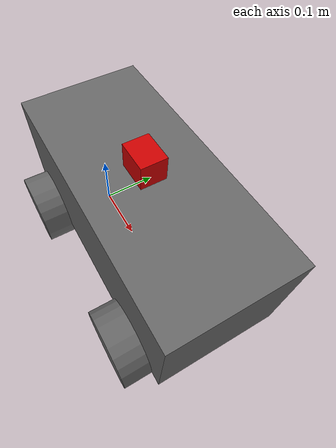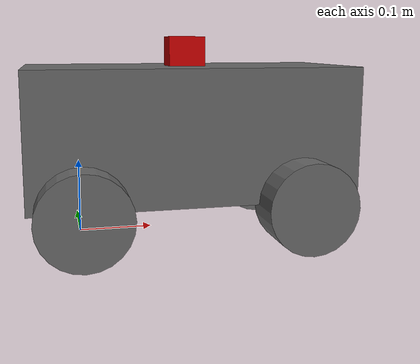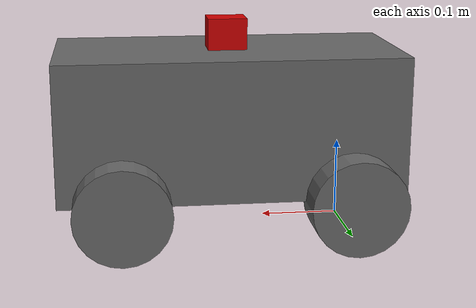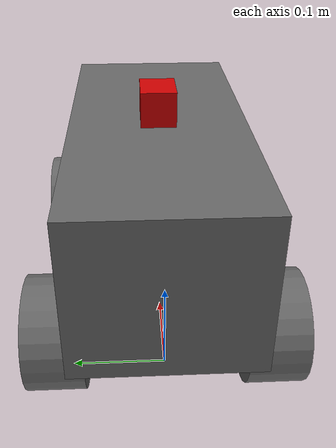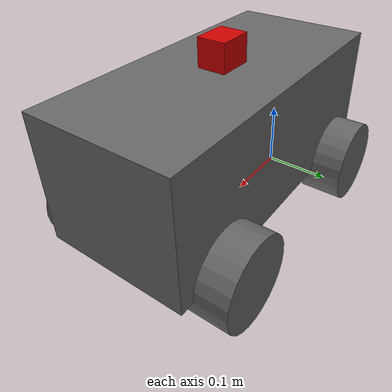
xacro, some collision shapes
<?xml version="1.0"?>
<robot name="bearcar" xmlns:xacro="http://ros.org/wiki/xacro">

      <xacro:include filename="bearcar_properties.xacro"/>
      <xacro:include filename="bearcar_core.xacro"/>
      <xacro:include filename="bearcar_lidar.xacro"/>
      <xacro:include filename="bearcar_d455.xacro"/>
      <xacro:include filename="bearcar_t265.xacro"/>

</robot>

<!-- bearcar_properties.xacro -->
<robot xmlns:xacro="http://www.ros.org/wiki/xacro">

    <material name="aluminum">
        <color rgba="0.5 0.5 0.5 1"/>
    </material>

    <material name="black">
        <color rgba="0.0 0.0 0.0 1.0"/>
    </material>

    <material name="blue">
        <color rgba="0.0 0.0 0.8 1.0"/>
    </material>

    <material name="brown">
        <color rgba="0.8706 0.8118 0.7647 1.0"/>
    </material>

    <material name="dark">
        <color rgba="0.3 0.3 0.3 1.0"/>
    </material>

    <material name="green">
        <color rgba="0.0 0.8 0.0 1.0"/>
    </material>

    <material name="grey">
        <color rgba="0.5 0.5 0.5 1.0"/>
    </material>

    <material name="light_black">
        <color rgba="0.4 0.4 0.4 1.0"/>
    </material>

    <material name="orange">
        <color rgba="1.0 0.4235 0.0392 1.0"/>
    </material>

    <material name="plastic">
        <color rgba="0.1 0.1 0.1 1"/>
    </material>

    <material name="red">
        <color rgba="0.8 0.0 0.0 1.0"/>
    </material>

    <material name="white">
        <color rgba="1.0 1.0 1.0 1.0"/>
    </material>

    <xacro:macro name="inertial_box" params="mass x y z *origin">
        <inertial>
            <xacro:insert_block name="origin"/>
            <mass value="${mass}" />
            <inertia ixx="${(1/12) * mass * (y*y+z*z)}" ixy="0.0" ixz="0.0"
                    iyy="${(1/12) * mass * (x*x+z*z)}" iyz="0.0"
                    izz="${(1/12) * mass * (x*x+y*y)}" />
        </inertial>
    </xacro:macro>

    <xacro:macro name="inertial_cylinder" params="mass length radius *origin">
        <inertial>
            <xacro:insert_block name="origin"/>
            <mass value="${mass}" />
            <inertia ixx="${(1/12) * mass * (3*radius*radius + length*length)}" ixy="0.0" ixz="0.0"
                    iyy="${(1/12) * mass * (3*radius*radius + length*length)}" iyz="0.0"
                    izz="${(1/2) * mass * (radius*radius)}" />
        </inertial>
    </xacro:macro>

    <xacro:macro name="inertial_sphere" params="mass radius *origin">
        <inertial>
            <xacro:insert_block name="origin"/>
            <mass value="${mass}" />
            <inertia ixx="${(2/5) * mass * (radius*radius)}" ixy="0.0" ixz="0.0"
                    iyy="${(2/5) * mass * (radius*radius)}" iyz="0.0"
                    izz="${(2/5) * mass * (radius*radius)}" />
        </inertial>
    </xacro:macro>

</robot>

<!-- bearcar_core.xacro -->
<robot xmlns:xacro="http://www.ros.org/wiki/xacro">

  <!-- BASE_FOOTPRINT LINK -->
  <link name="base_footprint"/>

  <!-- BASE LINK -->
  <joint name="base_joint" type="fixed">
    <parent link="base_footprint"/>
    <child link="base_link" />
    <origin xyz="0 0 0.050" rpy="0 0 0"/>
  </joint>

  <link name="base_link">                                                           <!--Base Frame in 0 0 0-->
    <visual>
      <origin xyz="0.15 0 0.0895" rpy="0 0 0"/>                                     <!-- Change the Position of the Box relative to the base_link -->
      <geometry>
        <box size="0.44 0.202 0.179"/>                                              <!-- Box Size -->
      </geometry>
      <material name="light_black"/>
    </visual>
    <collision>
      <origin xyz="0.15 0 0.0895" rpy="0 0 0"/>
      <geometry>
        <box size="0.44 0.202 0.179"/>
      </geometry>
    </collision>
    <xacro:inertial_box mass="1.3729096e+00" x="0.44" y="0.202" z="0.179">          <!-- XYZ Box Size & Mass of Turtlebot3 chassis (https://github.com/ROBOTIS-GIT/turtlebot3/blob/master/turtlebot3_description/urdf/turtlebot3_waffle.urdf.xacro) -->
      <origin xyz="0.15 0 0.0895" rpy="0 0 0"/>                                     <!-- Origin Shifted Box Size -->
    </xacro:inertial_box>
  </link>

  <!-- WHEEL LEFT BACK LINK -->
  <joint name="wheel_left_back_joint" type="continuous">
    <parent link="base_link"/>
    <child link="wheel_left_back_link"/>
    <origin xyz="0 0.114 0" rpy="-${pi/2} 0 0"/>                                    <!-- Shift Wheel Frame/Link -->
    <axis xyz ="0 0 1"/>
  </joint>

  <link name="wheel_left_back_link">
    <visual>
      <origin rpy="0 0 0" xyz="0 0 0"/>
      <geometry>
        <cylinder radius="0.061" length="0.062"/>                                   <!-- Wheel Size -->
      </geometry>
      <material name="light_black"/>
    </visual>
    <collision>
      <origin rpy="0 0 0" xyz="0 0 0"/>
      <geometry>
        <cylinder radius="0.061" length="0.062"/>
      </geometry>
    </collision>
    <xacro:inertial_cylinder mass="0.477" length="0.062" radius="0.061">            <!-- Mass of Jackal wheels: https://github.com/jackal/jackal/blob/noetic-devel/jackal_description/urdf/jackal.urdf.xacro -->
      <origin xyz="0 0 0" rpy="0 0 0"/>
    </xacro:inertial_cylinder>
  </link>

  <!-- WHEEL RIGHT BACK LINK -->
  <joint name="wheel_right_back_joint" type="continuous">
    <parent link="base_link"/>
    <child link="wheel_right_back_link"/>
    <origin xyz="0 -0.114 0" rpy="-${pi/2} 0 0"/>                                   <!-- Shift Wheel Frame/Link -->
    <axis xyz ="0 0 1"/>
  </joint>

  <link name="wheel_right_back_link">
    <visual>
      <origin rpy="0 0 0" xyz="0 0 0"/>
      <geometry>
        <cylinder radius="0.061" length="0.062"/>                                   <!-- Wheel Size -->
      </geometry>
      <material name="light_black"/>
    </visual>
    <collision>
      <origin rpy="0 0 0" xyz="0 0 0"/>
      <geometry>
        <cylinder radius="0.061" length="0.062"/>
      </geometry>
    </collision>
    <xacro:inertial_cylinder mass="0.477" length="0.062" radius="0.061">            <!-- Mass of Jackal wheels: https://github.com/jackal/jackal/blob/noetic-devel/jackal_description/urdf/jackal.urdf.xacro -->
        <origin xyz="0 0 0" rpy="0 0 0"/>
    </xacro:inertial_cylinder>
  </link>

  <!--  WHEEL LEFT FRONT LINK -->
  <joint name="wheel_left_front_joint" type="fixed">
    <parent link="base_link"/>
    <child link="wheel_left_front_link"/>
    <origin xyz="0.29 0.114 0" rpy="-${pi/2} 0 0"/>                                 <!-- Shift Wheel Frame/Link -->
  </joint>

  <link name="wheel_left_front_link">
    <visual>
      <origin rpy="0 0 0" xyz="0 0 0"/>
      <geometry>
        <cylinder radius="0.061" length="0.062"/>                                   <!-- Wheel Size -->
      </geometry>
      <material name="light_black"/>
    </visual>
    <collision>
      <origin rpy="0 0 0" xyz="0 0 0"/>
      <geometry>
        <cylinder radius="0.061" length="0.062"/>
      </geometry>
    </collision>
    <xacro:inertial_cylinder mass="0.477" length="0.062" radius="0.061">            <!-- Mass of Jackal wheels: https://github.com/jackal/jackal/blob/noetic-devel/jackal_description/urdf/jackal.urdf.xacro -->
        <origin xyz="0 0 0" rpy="0 0 0"/>
    </xacro:inertial_cylinder>
  </link>

  <!--  WHEEL RIGHT FRONT LINK -->
  <joint name="wheel_right_front_joint" type="fixed">
    <parent link="base_link"/>
    <child link="wheel_right_front_link"/>
    <origin xyz="0.29 -0.114 0" rpy="-${pi/2} 0 0"/>                                <!-- Shift Wheel Frame/Link -->
  </joint>

  <link name="wheel_right_front_link">
    <visual>
      <origin rpy="0 0 0" xyz="0 0 0"/>
      <geometry>
        <cylinder radius="0.061" length="0.062"/>                                   <!-- Wheel Size -->
      </geometry>
      <material name="light_black"/>
    </visual>
    <collision>
      <origin rpy="0 0 0" xyz="0 0 0"/>
      <geometry>
        <cylinder radius="0.061" length="0.062"/>
      </geometry>
    </collision>
    <xacro:inertial_cylinder mass="0.477" length="0.062" radius="0.061">             <!-- Mass of Jackal wheels: https://github.com/jackal/jackal/blob/noetic-devel/jackal_description/urdf/jackal.urdf.xacro -->
        <origin xyz="0 0 0" rpy="0 0 0"/>
    </xacro:inertial_cylinder>
  </link>

  <!-- Specify Gazebo Color for Simulation (Only Evaluated in Sim Mode) -->

</robot>

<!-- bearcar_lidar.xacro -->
<robot xmlns:xacro="http://www.ros.org/wiki/xacro">

  <joint name="base_of_lidar" type="fixed">
    <parent link="base_link"/>
    <child link="lidar"/>
    <origin xyz="0.15 0 0.199"/>
  </joint>

  <link name="lidar">
    <visual>
      <origin xyz="0 0 0" rpy="0 0 0"/>
      <geometry>
        <box size="0.05 0.04 0.04"/>
      </geometry>
      <material name="red"/>
    </visual>
    <collision>
      <geometry>
        <box size="0.05 0.04 0.04"/>
      </geometry>
    </collision>
    <xacro:inertial_box mass="0.114" x="0.05" y="0.04" z="0.04">   <!-- Mass of Turtlebot3 Lidar (base_scan): https://github.com/ROBOTIS-GIT/turtlebot3/blob/master/turtlebot3_description/urdf/turtlebot3_waffle.urdf.xacro) -->
      <origin xyz="0 0 0" rpy="0 0 0"/>
    </xacro:inertial_box>
  </link>

  <!-- Lidar Gazebo Simulation -->
  <gazebo reference="lidar">

        <material>Gazebo/Black</material>

        <sensor name="laser" type="ray">
            <pose> 0 0 0 0 0 0 </pose>
            <visualize>false</visualize>
            <update_rate>10</update_rate>
            <ray>
                <scan>
                    <horizontal>
                        <samples>360</samples>
                        <min_angle>-3.14</min_angle>
                        <max_angle>3.14</max_angle>
                    </horizontal>
                </scan>
                <range>
                    <min>0.3</min>
                    <max>12</max>
                </range>
            </ray>
            <plugin name="laser_controller" filename="libgazebo_ros_ray_sensor.so">
                <ros>
                    <argument>~/out:=scan</argument>
                </ros>
                <output_type>sensor_msgs/LaserScan</output_type>
                <frame_name>lidar</frame_name>
            </plugin>
        </sensor>
    </gazebo>

</robot>

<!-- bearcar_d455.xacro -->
<robot xmlns:xacro="http://www.ros.org/wiki/xacro">

  <joint name="base_of_D455" type="fixed">
    <parent link="base_link"/>
    <child link="D455_base_frame"/>
    <origin xyz="0.29 0 0.125"/>            <!-- Change Position of the D455 base frame relative to the base frame -->
  </joint>

  <link name="D455_base_frame">
    <visual>
      <geometry>
        <box size="0.01 0.08 0.02"/>
      </geometry>
      <material name="blue"/>
    </visual>
  </link>

  <!-- camera body, with origin at bottom screw mount -->
  <joint name="D455_joint" type="fixed">
    <origin rpy="0 0 0" xyz="0 0 0"/>
    <parent link="D455_base_frame"/>
    <child link="D455_bottom_screw_frame"/>
  </joint>

  <link name="D455_bottom_screw_frame"/>

  <joint name="D455_link_joint" type="fixed">
    <origin rpy="0 0 0" xyz="0.011150000000000002 0.0475 0.0145"/>
    <parent link="D455_bottom_screw_frame"/>
    <child link="D455_link"/>
  </joint>

  <link name="D455_link">
    <visual>
      <!-- the mesh origin is at front plate in between the two infrared camera axes -->
      <origin rpy="1.5707963267948966 0 1.5707963267948966" xyz="0.0046500000000000005 -0.0475 0"/>
      <geometry>
        <mesh filename="package://bearcar_description/meshes/d455.stl" scale="0.001 0.001 0.001"/>
      </geometry>
      <material name="aluminum"/>
    </visual>
    <collision>
      <origin rpy="0 0 0" xyz="-0.00845 -0.0475 0"/>
      <geometry>
         <box size="0.026 0.124 0.029"/>  <!-- collision box for the D455 -->
      </geometry>
    </collision>
    <inertial> <!-- Inertial for the D455 -->
      <!-- The following are not reliable values, and should not be used for modeling -->
      <mass value="0.072"/>
      <origin xyz="0 0 0"/>
      <inertia ixx="0.003881243" ixy="0.0" ixz="0.0" iyy="0.000498940" iyz="0.0" izz="0.003879257"/>
    </inertial>
  </link>

  <!-- camera depth joints and links -->
  <joint name="D455_depth_joint" type="fixed">
    <origin rpy="0 0 0" xyz="0 0 0"/>
    <parent link="D455_link"/>
    <child link="D455_depth_frame"/>
  </joint>

  <link name="D455_depth_frame"/>

  <joint name="D455_depth_optical_joint" type="fixed">
    <origin rpy="-1.5707963267948966 0 -1.5707963267948966" xyz="0 0 0"/>
    <parent link="D455_depth_frame"/>
    <child link="D455_depth_optical_frame"/>
  </joint>

  <link name="D455_depth_optical_frame"/>

  <!-- camera left IR joints and links -->
  <joint name="D455_infra1_joint" type="fixed">
    <origin rpy="0 0 0" xyz="0 0.0 0"/>
    <parent link="D455_link"/>
    <child link="D455_infra1_frame"/>
  </joint>

  <link name="D455_infra1_frame"/>

  <joint name="D455_infra1_optical_joint" type="fixed">
    <origin rpy="-1.5707963267948966 0 -1.5707963267948966" xyz="0 0 0"/>
    <parent link="D455_infra1_frame"/>
    <child link="D455_infra1_optical_frame"/>
  </joint>

  <link name="D455_infra1_optical_frame"/>

  <!-- camera right IR joints and links -->
  <joint name="D455_infra2_joint" type="fixed">
    <origin rpy="0 0 0" xyz="0 -0.095 0"/>
    <parent link="D455_link"/>
    <child link="D455_infra2_frame"/>
  </joint>

  <link name="D455_infra2_frame"/>

  <joint name="D455_infra2_optical_joint" type="fixed">
    <origin rpy="-1.5707963267948966 0 -1.5707963267948966" xyz="0 0 0"/>
    <parent link="D455_infra2_frame"/>
    <child link="D455_infra2_optical_frame"/>
  </joint>

  <link name="D455_infra2_optical_frame"/>

  <!-- camera color joints and links -->
  <joint name="D455_color_joint" type="fixed">
    <origin rpy="0 0 0" xyz="0 -0.059 0"/>
    <parent link="D455_link"/>
    <child link="D455_color_frame"/>
  </joint>

  <link name="D455_color_frame"/>

  <joint name="D455_color_optical_joint" type="fixed">
    <origin rpy="-1.5707963267948966 0 -1.5707963267948966" xyz="0 0 0"/>
    <parent link="D455_color_frame"/>
    <child link="D455_color_optical_frame"/>
  </joint>

  <link name="D455_color_optical_frame"/>

  <!-- IMU -->
  <!-- see datasheet Revision 009, page 114 -->
  <joint name="D455_accel_joint" type="fixed">
    <origin rpy="0 0 0" xyz="-0.01602 -0.03022 0.0074"/>
    <parent link="D455_link"/>
    <child link="D455_accel_frame"/>
  </joint>

  <link name="D455_accel_frame"/>

  <joint name="D455_accel_optical_joint" type="fixed">
    <origin rpy="-1.5707963267948966 0 -1.5707963267948966" xyz="0 0 0"/>
    <parent link="D455_accel_frame"/>
    <child link="D455_accel_optical_frame"/>
  </joint>

  <link name="D455_accel_optical_frame"/>

  <joint name="D455_gyro_joint" type="fixed">
    <origin rpy="0 0 0" xyz="-0.01602 -0.03022 0.0074"/>
    <parent link="D455_link"/>
    <child link="D455_gyro_frame"/>
  </joint>

  <link name="D455_gyro_frame"/>

  <joint name="D455_gyro_optical_joint" type="fixed">
    <origin rpy="-1.5707963267948966 0 -1.5707963267948966" xyz="0 0 0"/>
    <parent link="D455_gyro_frame"/>
    <child link="D455_gyro_optical_frame"/>
  </joint>

  <link name="D455_gyro_optical_frame"/>

  <joint name="D455_imu_optical_joint" type="fixed">
    <origin rpy="0 0 0" xyz="0 0 0"/>
    <parent link="D455_gyro_optical_frame"/>
    <child link="D455_imu_optical_frame"/>
  </joint>

  <link name="D455_imu_optical_frame"/>

</robot>

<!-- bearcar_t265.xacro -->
<robot xmlns:xacro="http://www.ros.org/wiki/xacro">

  <joint name="base_of_T265" type="fixed">
    <parent link="base_link"/>
    <child link="T265_pose_frame"/>
    <origin xyz="0.29 0 0.155"/>
  </joint>

  <link name="T265_pose_frame">
    <visual>
      <origin xyz="0 0 0" rpy="0 0 0"/>
      <geometry>
        <box size="0.01 0.08 0.02"/>
      </geometry>
      <material name="blue"/>
    </visual>
    <collision>
      <origin xyz="0.0027 0 0"/>
      <geometry>
        <box size="0.026 0.124 0.029"/>
      </geometry>
    </collision>
    <xacro:inertial_box mass="0.068024" x="0.01" y="0.08" z="0.02">    <!-- Mass T265 from: https://github.com/m-tartari/realsense_gazebo_description/blob/master/urdf/_t265.urdf.xacro                                                               -->
      <origin xyz="0 0 0" rpy="0 0 0"/>
    </xacro:inertial_box>
  </link>

</robot>
